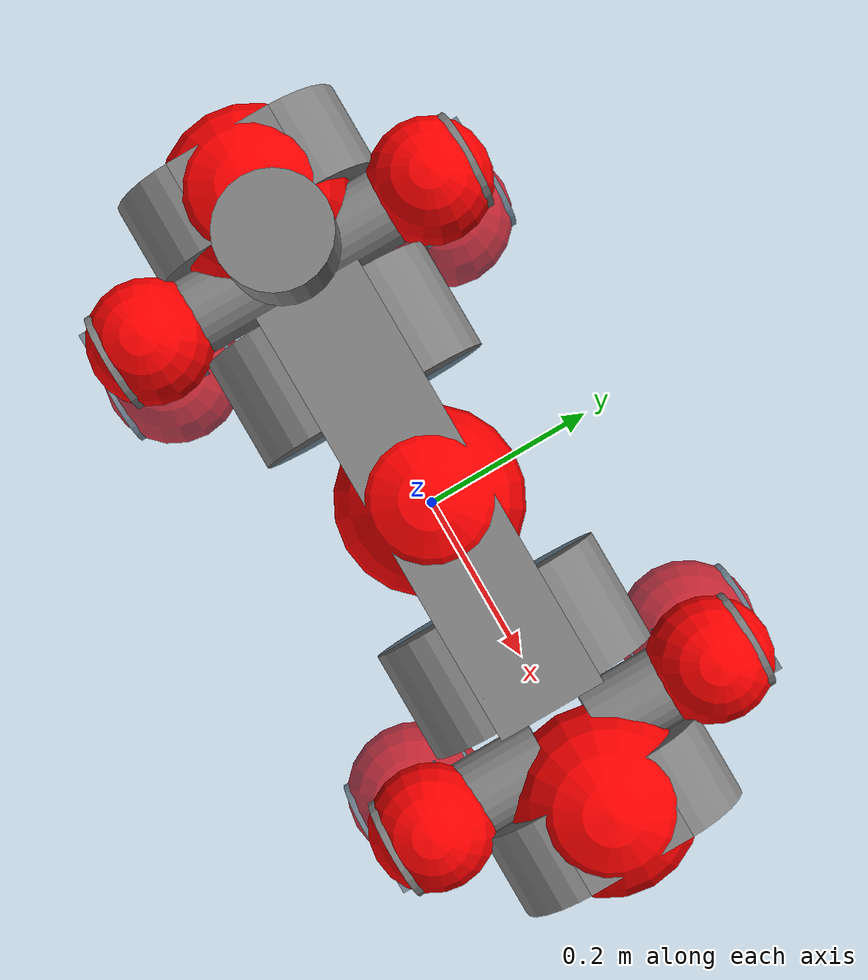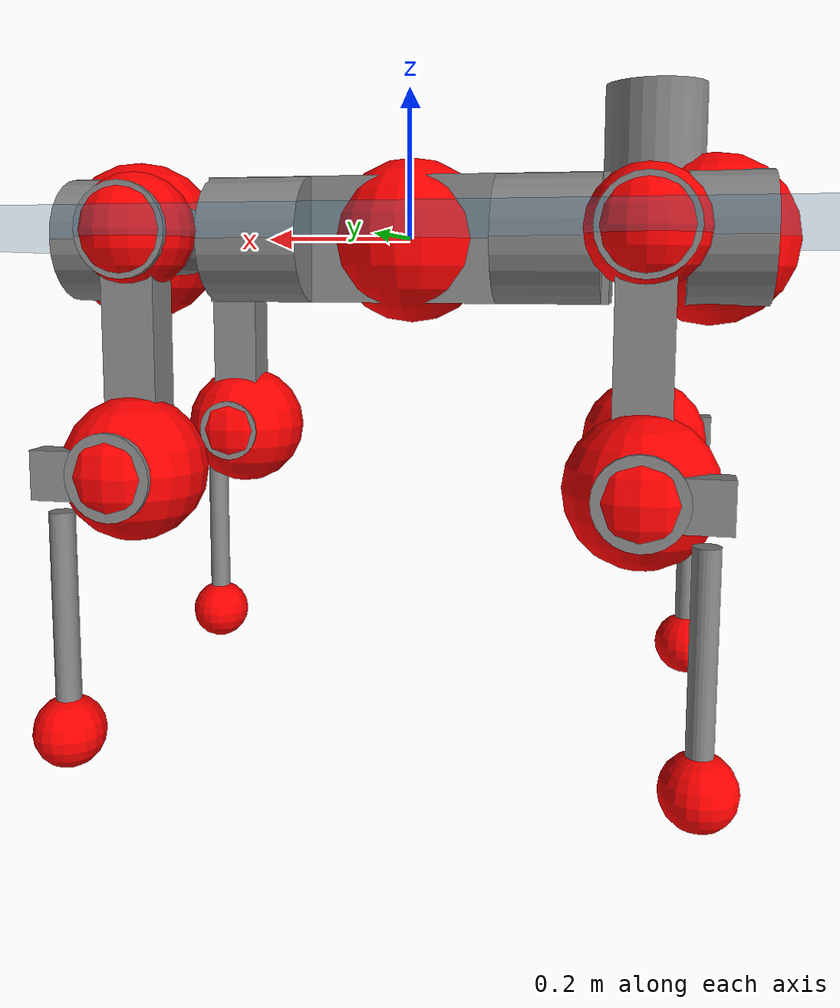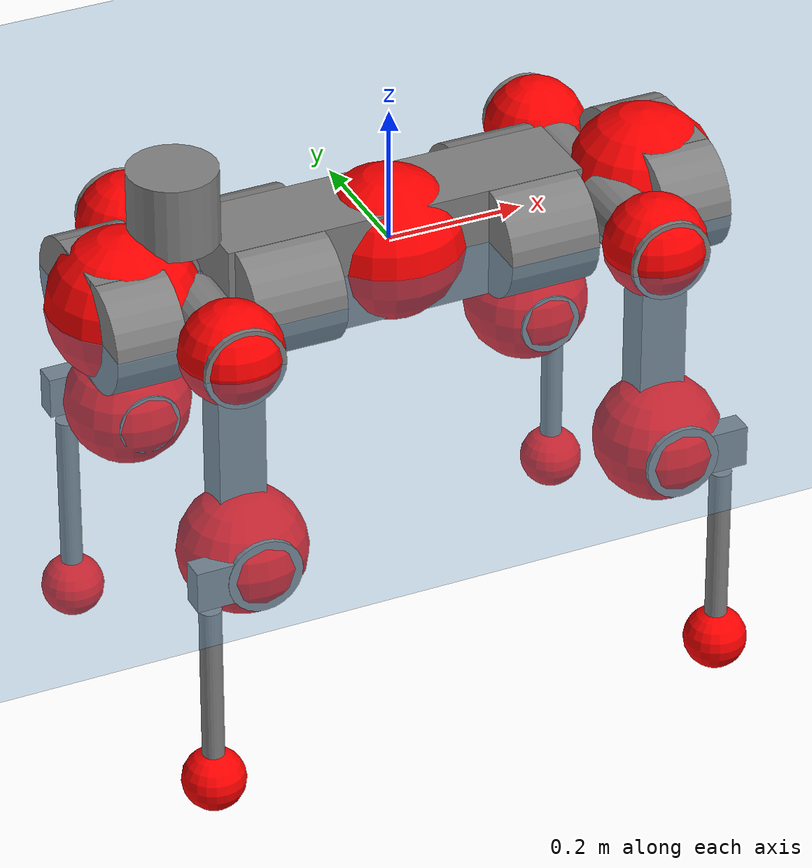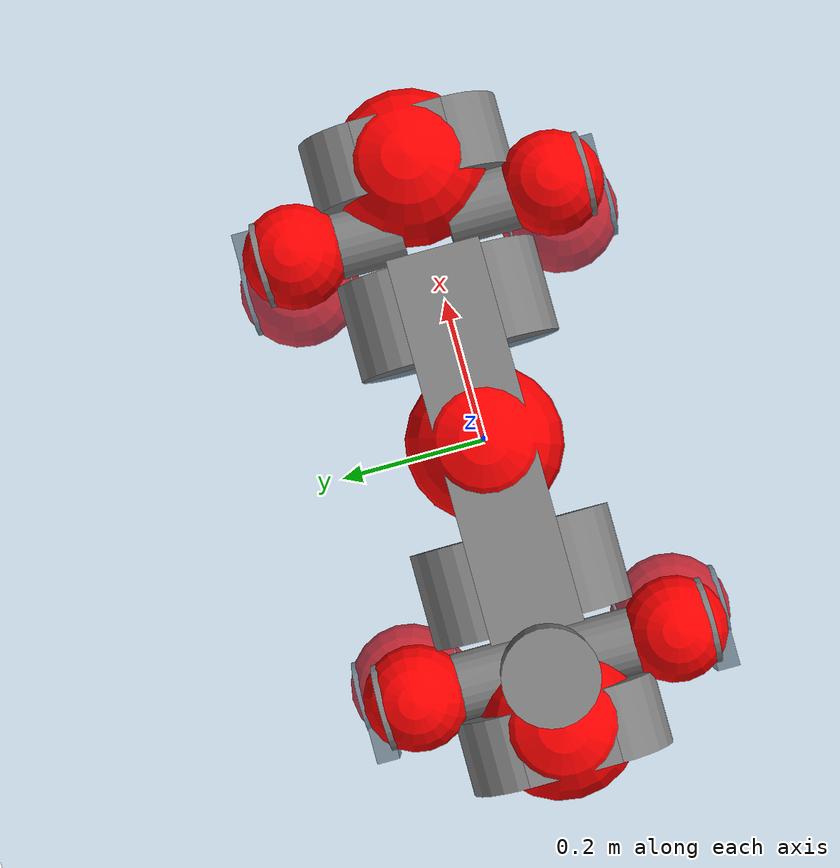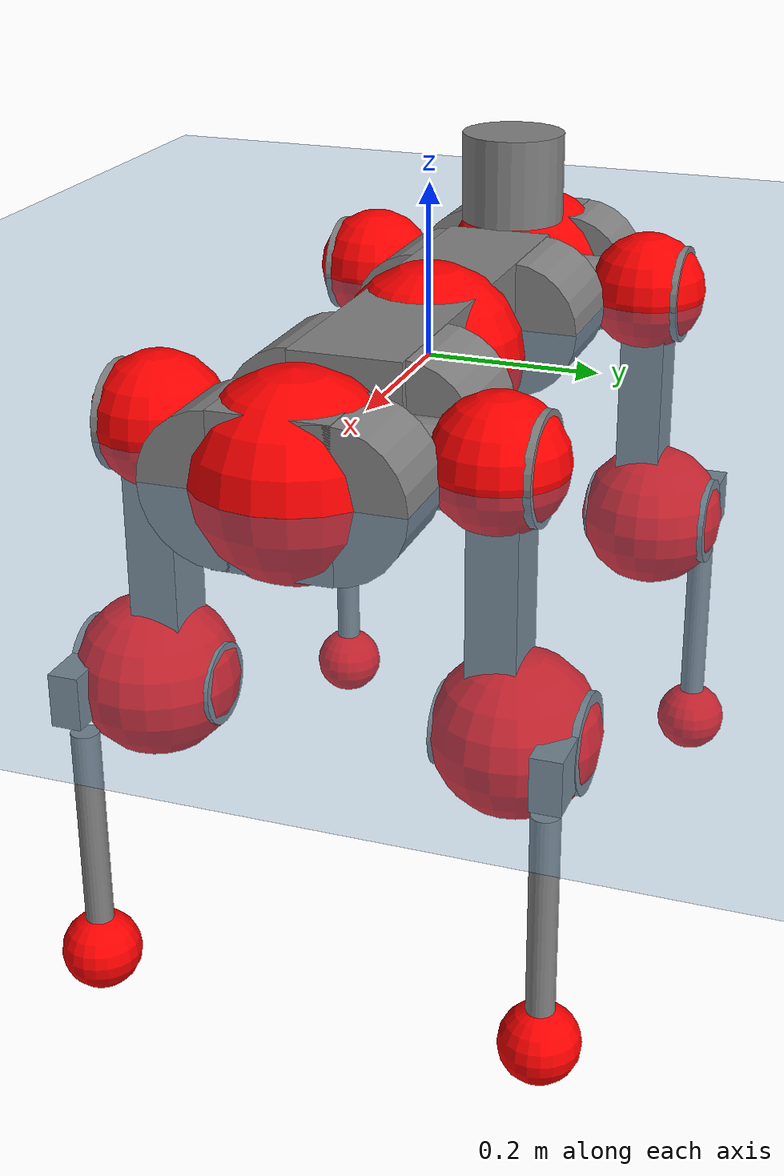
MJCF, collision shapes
<mujoco model="anymal_c">
  <compiler angle="radian" assetdir="assets" balanceinertia="true" inertiafromgeom="false"/>

  <option timestep="0.005" density="1.2" viscosity="2e-05"/>

  <size nkey="1"/>

  <visual>
    <quality shadowsize="8192"/>
    <map shadowclip="0.5"/>
  </visual>

  <default>
    <default class="/">
      <material specular="0" shininess="0.25"/>
      <geom contype="0" conaffinity="0" group="1" solref="-1000 -80"/>
      <site size="0.01 0.005 0.005" group="5"/>
      <general forcelimited="true" forcerange="-80 80" biastype="affine" gainprm="80" biasprm="0 -80 -2"/>
      <default class="anymal_c">
        <joint armature="0.01" damping="0.01" frictionloss="0.1"/>
        <default class="visual">
          <geom type="mesh" group="2"/>
          <default class="visual_zflip"/>
        </default>
        <default class="collision">
          <geom type="cylinder" group="3"/>
          <default class="foot">
            <geom size="0.03 0 0" type="sphere" condim="6" priority="1" friction="0.8 0.02 0.01" solimp="0.015 1 0.03"/>
          </default>
        </default>
      </default>
      <default class="reward_collision_sphere">
        <geom group="5" rgba="1 0 0 1"/>
      </default>
    </default>
  </default>

  <asset>
    <texture type="skybox" colorspace="auto" name="//unnamed_texture_0" builtin="gradient" rgb1="0.95 0.95 0.95" rgb2="0.95 0.95 0.95" width="100" height="600"/>
    <texture type="2d" colorspace="auto" name="texplane" builtin="checker" rgb1="0.345 0.575 0.748" rgb2="0.345 0.575 0.748" markrgb="1 1 1" width="512" height="512"/>
    <texture type="2d" colorspace="linear" name="base" file="base.png"/>
    <texture type="2d" colorspace="linear" name="top_shell" file="top_shell.png"/>
    <texture type="2d" colorspace="linear" name="bottom_shell" file="bottom_shell.png"/>
    <texture type="2d" colorspace="linear" name="remote" file="remote.png"/>
    <texture type="2d" colorspace="linear" name="hatch" file="hatch.png"/>
    <texture type="2d" colorspace="linear" name="handle" file="handle.png"/>
    <texture type="2d" colorspace="linear" name="face" file="face.png"/>
    <texture type="2d" colorspace="linear" name="battery" file="battery.png"/>
    <texture type="2d" colorspace="linear" name="lidar_cage" file="lidar_cage.png"/>
    <texture type="2d" colorspace="linear" name="depth_camera" file="depth_camera.png"/>
    <texture type="2d" colorspace="linear" name="wide_angle_camera" file="wide_angle_camera.png"/>
    <texture type="2d" colorspace="linear" name="lidar" file="lidar.png"/>
    <texture type="2d" colorspace="linear" name="drive" file="drive.png"/>
    <texture type="2d" colorspace="linear" name="hip_l" file="hip_l.png"/>
    <texture type="2d" colorspace="linear" name="shank_l" file="shank_l.png"/>
    <texture type="2d" colorspace="linear" name="foot" file="foot.png"/>
    <texture type="2d" colorspace="linear" name="thigh" file="thigh.png"/>
    <texture type="2d" colorspace="linear" name="shank_r" file="shank_r.png"/>
    <texture type="2d" colorspace="linear" name="hip_r" file="hip_r.png"/>
    <material name="MatPlane" class="/" texture="texplane" texuniform="true" texrepeat="2 2" specular="0.9" shininess="0.5"/>
    <material name="black_plastic" class="/" rgba="0.007 0.007 0.007 1"/>
    <material name="green" class="/" rgba="0.052 0.178 0.033 1"/>
    <material name="red" class="/" rgba="0.178 0.006 0.005 1"/>
    <material name="yellow" class="/" rgba="0.178 0.119 0.006 1"/>
    <material name="lwl" class="/" rgba="0.8 0.8 0.8 1"/>
    <material name="base" class="/" texture="base"/>
    <material name="top_shell" class="/" texture="top_shell"/>
    <material name="bottom_shell" class="/" texture="bottom_shell"/>
    <material name="hip_l" class="/" texture="hip_l"/>
    <material name="thigh" class="/" texture="thigh"/>
    <material name="shank_l" class="/" texture="shank_l"/>
    <material name="foot" class="/" texture="foot"/>
    <material name="hip_r" class="/" texture="hip_r"/>
    <material name="shank" class="/" texture="shank_r"/>
    <material name="hatch" class="/" texture="hatch"/>
    <material name="remote" class="/" texture="remote"/>
    <material name="handle" class="/" texture="handle"/>
    <material name="face" class="/" texture="face"/>
    <material name="depth_camera" class="/" texture="depth_camera"/>
    <material name="wide_angle_camera" class="/" texture="wide_angle_camera"/>
    <material name="battery" class="/" texture="battery"/>
    <material name="lidar_cage" class="/" texture="lidar_cage"/>
    <material name="lidar" class="/" texture="lidar"/>
    <material name="drive" class="/" texture="drive"/>
    <mesh name="base_0" class="/" file="base_0.obj"/>
    <mesh name="base_1" class="/" file="base_1.obj"/>
    <mesh name="base_2" class="/" file="base_2.obj"/>
    <mesh name="base_3" class="/" file="base_3.obj"/>
    <mesh name="base_4" class="/" file="base_4.obj"/>
    <mesh name="base_5" class="/" file="base_5.obj"/>
    <mesh name="top_shell" class="/" file="top_shell.obj"/>
    <mesh name="bottom_shell" class="/" file="bottom_shell.obj"/>
    <mesh name="remote" class="/" file="remote.obj"/>
    <mesh name="handle" class="/" file="handle.obj"/>
    <mesh name="face" class="/" file="face.obj"/>
    <mesh name="wide_angle_camera" class="/" file="wide_angle_camera.obj"/>
    <mesh name="depth_camera" class="/" file="depth_camera.obj"/>
    <mesh name="battery" class="/" file="battery.obj"/>
    <mesh name="lidar_cage" class="/" file="lidar_cage.obj"/>
    <mesh name="lidar" class="/" file="lidar.obj"/>
    <mesh name="drive" class="/" file="drive.obj"/>
    <mesh name="hip_l" class="/" file="hip_l.obj"/>
    <mesh name="thigh" class="/" file="thigh.obj"/>
    <mesh name="shank_l" class="/" file="shank_l.obj"/>
    <mesh name="foot" class="/" file="foot.obj"/>
    <mesh name="hip_r" class="/" file="hip_r.obj"/>
    <mesh name="hatch" class="/" file="hatch.obj"/>
    <mesh name="shank_r" class="/" file="shank_r.obj"/>
  </asset>

  <worldbody>
    <geom name="floor" class="/" size="100 100 0.125" type="plane" group="0" material="MatPlane"/>
    <light name="toplight_shadow" class="/" pos="0 0 5" dir="0.0990148 0.0990148 -0.990148" type="directional" ambient="0.04 0.04 0.04" diffuse="0.55 0.55 0.55" specular="0.12 0.12 0.12"/>
    <light name="toplight_fill" class="/" pos="0 0 5" dir="0.0990148 0.0990148 -0.990148" type="directional" castshadow="false" ambient="0.04 0.04 0.04" diffuse="0.3 0.3 0.3" specular="0.08 0.08 0.08"/>
    <body name="trunk" childclass="anymal_c" pos="-0.00279092 -0.000693494 -0.00258312" quat="0.999999 0.00026428 -0.00137912 0.000199434">
      <inertial pos="-0.000752438 0.00244098 0.0516108" quat="0.502783 0.496437 0.492352 0.50828" mass="14.8846" diaginertia="0.330618 0.239027 0.280625"/>
      <joint name="//unnamed_joint_0" type="free" armature="0" damping="0" frictionloss="0"/>
      <geom name="//unnamed_geom_1" class="visual" material="green" mesh="base_0"/>
      <geom name="//unnamed_geom_2" class="visual" material="yellow" mesh="base_1"/>
      <geom name="//unnamed_geom_3" class="visual" material="red" mesh="base_2"/>
      <geom name="//unnamed_geom_4" class="visual" material="black_plastic" mesh="base_3"/>
      <geom name="//unnamed_geom_5" class="visual" material="lwl" mesh="base_4"/>
      <geom name="//unnamed_geom_6" class="visual" material="base" mesh="base_5"/>
      <geom name="trunk_1" class="collision" size="0.266023 0.0642124 0.0825588" type="box"/>
      <geom name="trunk_2" class="collision" size="0.0825588 0.0665057" pos="0.189963 0.057961 0" quat="0.707107 0 0.707107 0"/>
      <geom name="trunk_3" class="collision" size="0.0825588 0.0665057" pos="-0.189963 0.057961 0" quat="0.707107 0 0.707107 0"/>
      <geom name="trunk_4" class="collision" size="0.0825588 0.0665057" pos="0.189963 -0.057961 0" quat="0.707107 0 0.707107 0"/>
      <geom name="trunk_5" class="collision" size="0.0825588 0.0665057" pos="-0.189963 -0.057961 0" quat="0.707107 0 0.707107 0"/>
      <geom name="//unnamed_geom_12" class="visual" material="top_shell" mesh="top_shell"/>
      <geom name="//unnamed_geom_13" class="visual" material="bottom_shell" mesh="bottom_shell"/>
      <geom name="//unnamed_geom_14" class="visual" material="remote" mesh="remote"/>
      <geom name="//unnamed_geom_15" class="visual" material="handle" mesh="handle"/>
      <geom name="//unnamed_geom_16" class="visual" pos="0.362022 0 0" quat="1 0 0 0" material="face" mesh="face"/>
      <geom name="trunk_6" class="collision" size="0.0504526 0.0642124 0.0825588" pos="0.410058 0 0" type="box"/>
      <geom name="//unnamed_geom_18" class="collision" size="0.0825588 0.0504526" pos="0.410058 0.057961 0" quat="0.707107 0 0.707107 0"/>
      <geom name="//unnamed_geom_19" class="collision" size="0.0825588 0.0504526" pos="0.410058 -0.057961 0" quat="0.707107 0 0.707107 0"/>
      <geom name="//unnamed_geom_20" class="visual" pos="0.403209 0 -0.0320226" quat="0.965926 0 0.258819 0" material="depth_camera" mesh="depth_camera"/>
      <geom name="//unnamed_geom_21" class="visual" pos="0.448051 0 0.0157268" material="wide_angle_camera" mesh="wide_angle_camera"/>
      <geom name="//unnamed_geom_22" class="visual_zflip" pos="-0.362022 0 0" quat="0 0 0 1" material="face" mesh="face"/>
      <geom name="trunk_7" class="collision" size="0.0504526 0.0642124 0.0825588" pos="-0.410058 0 0" quat="0 0 0 1" type="box"/>
      <geom name="//unnamed_geom_24" class="collision" size="0.0825588 0.0504526" pos="-0.410058 -0.057961 0" quat="0 -0.707107 0 0.707107"/>
      <geom name="//unnamed_geom_25" class="collision" size="0.0825588 0.0504526" pos="-0.410058 0.057961 0" quat="0 -0.707107 0 0.707107"/>
      <geom name="//unnamed_geom_26" class="visual" pos="-0.403209 0 -0.0320226" quat="0 -0.258819 0 0.965926" material="depth_camera" mesh="depth_camera"/>
      <geom name="//unnamed_geom_27" class="visual_zflip" pos="-0.448051 0 0.0157268" quat="0 0 0 1" material="wide_angle_camera" mesh="wide_angle_camera"/>
      <geom name="//unnamed_geom_28" class="visual" material="battery" mesh="battery"/>
      <geom name="//unnamed_geom_29" class="visual" pos="0 0.0627219 0.0291722" quat="0.683013 -0.183013 0.183013 0.683013" material="depth_camera" mesh="depth_camera"/>
      <geom name="//unnamed_geom_30" class="visual" pos="0 -0.0627219 0.0291722" quat="0.683013 0.183013 0.183013 -0.683013" material="depth_camera" mesh="depth_camera"/>
      <geom name="//unnamed_geom_31" class="visual" pos="-0.317915 0 0.0772157" quat="1 0 0 0" material="lidar_cage" mesh="lidar_cage"/>
      <geom name="trunk_8" class="collision" size="0.0642124 0.0550392" pos="-0.317915 0 0.140249"/>
      <geom name="//unnamed_geom_33" class="visual" pos="-0.317915 -1.78282e-05 0.149389" quat="0.707107 0 0 -0.707107" material="lidar" mesh="lidar"/>
      <geom name="//unnamed_geom_34" class="visual" pos="0.261931 0.0861926 -3.83883e-09" quat="0.258819 0.965926 0 0" material="drive" mesh="drive"/>
      <geom name="//unnamed_geom_35" class="visual" pos="0.261931 -0.0861926 3.83883e-09" quat="0.258819 -0.965926 0 0" material="drive" mesh="drive"/>
      <geom name="//unnamed_geom_36" class="visual" pos="-0.261931 0.0861926 3.83883e-09" quat="0 0 0.965926 -0.258819" material="drive" mesh="drive"/>
      <geom name="//unnamed_geom_37" class="visual" pos="-0.261931 -0.0861926 -3.83883e-09" quat="0 0 -0.965926 -0.258819" material="drive" mesh="drive"/>
      <geom name="//unnamed_geom_38" class="visual" pos="0.101314 0 0.0766904" quat="1 0 0 0" material="hatch" mesh="hatch"/>
      <geom name="//unnamed_geom_39" class="reward_collision_sphere" size="0.110078"/>
      <geom name="//unnamed_geom_40" class="reward_collision_sphere" size="0.110078" pos="0.393027 0 0"/>
      <geom name="//unnamed_geom_41" class="reward_collision_sphere" size="0.110078" pos="-0.393027 0 0"/>
      <site name="imu" pos="0.230952 0.00339392 0.0400183" size="0.0091732"/>
      <camera name="track" pos="0 -1.65603 0" quat="0.707107 0.707107 0 0" mode="trackcom"/>
      <camera name="ego_camera" pos="0.393027 0 -0.0420221" quat="-0.5 -0.5 0.5 0.5"/>
      <body name="LF_HIP" pos="0.262248 0.0855256 -0.00266975" quat="0.258584 0.965989 -0.000381063 -0.000452026">
        <inertial pos="0.0469685 -0.0134508 -0.00931419" quat="-0.125591 0.707105 -0.148601 0.679814" mass="2.18961" diaginertia="0.00304657 0.00196612 0.00443976"/>
        <joint name="LF_HAA" pos="0 0 0" axis="0.999867 0.0105197 0.0125012" range="-0.68339 0.480762" armature="0.0104963" damping="0.00314814" frictionloss="0.0943891"/>
        <geom name="//unnamed_geom_42" class="visual" pos="0 -0.000225821 3.70909e-05" quat="0.258819 -0.965926 0 0" material="hip_l" mesh="hip_l"/>
        <geom name="//unnamed_geom_43" class="visual" pos="0.0523163 -0.0628739 -0.0379463" quat="0.183013 -0.683013 0.683013 0.183013" material="drive" mesh="drive"/>
        <geom name="//unnamed_geom_44" class="collision" size="0.045866 0.0642124" pos="0.0523163 -0.00990289 -0.00725407" quat="-0.353553 -0.612372 0.612372 -0.353553"/>
        <body name="LF_THIGH" pos="0.0528721 -0.0603187 -0.0467299" quat="0.182867 -0.682968 0.683061 0.183145">
          <inertial pos="0.0274947 -0.00167306 -0.258754" quat="0.993195 -0.00314412 -0.0770305 0.0872923" mass="2.35533" diaginertia="0.0151464 0.0111276 0.00529219"/>
          <joint name="LF_HFE" pos="0 0 0" axis="0.999995 -0.000674917 0.00299283" stiffness="0.0111463" range="-3.15008 3.16107" armature="0.00802476" damping="0.00208783" frictionloss="0.0918887"/>
          <geom name="//unnamed_geom_45" class="visual" pos="0.000902863 1.4227e-06 0" quat="0.707107 0 0 -0.707107" material="thigh" mesh="thigh"/>
          <geom name="//unnamed_geom_46" class="collision" size="0.0596258 0.0366928" pos="0.0349357 0 0" quat="0.5 0.5 -0.5 -0.5"/>
          <geom name="//unnamed_geom_47" class="collision" size="0.0343995 0.0275196 0.12963" pos="0.0262018 0 -0.148458" quat="0.707107 0 0 -0.707107" type="box"/>
          <geom name="//unnamed_geom_48" class="visual" pos="0.0876014 0 -0.299408" quat="1 0 0 0" material="drive" mesh="drive"/>
          <geom name="//unnamed_geom_49" class="collision" size="0.045866 0.0642124" pos="0.0264638 0 -0.299408" quat="0.707107 0 0.707107 0"/>
          <geom name="//unnamed_geom_50" class="reward_collision_sphere" size="0.0733856" pos="0.0218348 0 0"/>
          <body name="LF_SHANK" pos="0.0880176 0.000913118 -0.296792" quat="1 -1.49454e-05 -8.16821e-05 1.766e-05">
            <inertial pos="0.00375177 -0.0533583 -0.0819837" quat="0.99295 -0.115902 -0.000841935 -0.0248421" mass="0.46425" diaginertia="0.00534519 0.00357917 0.00143258"/>
            <joint name="LF_KFE" pos="0 0 0" axis="0.999999 0.00049729 0.00102731" range="-3.08386 3.09721" armature="0.00920727" damping="0.00791931" frictionloss="0.0956814"/>
            <geom name="//unnamed_geom_51" class="visual" pos="0.000294404 0.00156978 0" quat="0.707107 0 0 -0.707107" material="shank_l" mesh="shank_l"/>
            <geom name="LF_kfe_act" class="collision" size="0.0550392 0.0183464" pos="0.0174679 0 0" quat="0.5 0.5 -0.5 -0.5"/>
            <geom name="//unnamed_geom_53" class="collision" size="0.052745 0.0309596 0.0174291" pos="0.0174679 -0.04761 0" quat="0.5 0.5 -0.5 -0.5" type="box"/>
            <geom name="//unnamed_geom_54" class="visual" pos="0.0113977 -0.072318 -0.355056" quat="0.382683 0 0 -0.92388" material="foot" mesh="foot"/>
            <geom name="LF_calf" class="collision" size="0.0160531 0.129573" pos="0.0113978 -0.0728239 -0.177528" quat="0.707107 0 0 -0.707107"/>
            <geom name="LF_foot" class="foot" size="0.0269986" pos="0.0113978 -0.0728239 -0.331418" quat="0.707107 0 0 -0.707107"/>
            <geom name="//unnamed_geom_57" class="reward_collision_sphere" size="0.091732" pos="-0.0436697 0 0"/>
            <geom name="//unnamed_geom_58" class="reward_collision_sphere" size="0.045866" pos="0.0113978 -0.0728239 -0.331418"/>
            <site name="LF_foot" class="foot" pos="0.0113978 -0.0728239 -0.331418" quat="0.707107 0 0 -0.707107" size="0.0091732"/>
          </body>
        </body>
      </body>
      <body name="RF_HIP" pos="0.265135 -0.0837274 0.00189419" quat="0.258772 -0.965938 9.18987e-05 0.000132387">
        <inertial pos="0.0489271 0.0103075 -0.00884351" quat="0.141808 0.678042 0.122418 0.710748" mass="2.17972" diaginertia="0.00293347 0.00200276 0.00427752"/>
        <joint name="RF_HAA" pos="0 0 0" axis="1 -0.000428466 6.37499e-05" range="-0.437929 0.704848" armature="0.00928842" damping="0.0128237" frictionloss="0.0986625"/>
        <geom name="//unnamed_geom_59" class="visual" pos="0 0.000225819 3.70908e-05" quat="0.258819 0.965926 0 0" material="hip_r" mesh="hip_r"/>
        <geom name="//unnamed_geom_60" class="visual" pos="0.0523163 0.0628739 -0.0379463" quat="0.183013 0.683013 0.683013 -0.183013" material="drive" mesh="drive"/>
        <geom name="//unnamed_geom_61" class="collision" size="0.045866 0.0642124" pos="0.0523163 0.00990289 -0.00725407" quat="-0.353553 0.612372 0.612372 0.353553"/>
        <body name="RF_THIGH" pos="0.055121 0.0618357 -0.0470788" quat="0.182839 0.68313 0.682936 -0.183033">
          <inertial pos="0.0271228 -0.000128607 -0.259381" quat="0.992957 -0.00287748 -0.0797687 0.0875517" mass="2.4543" diaginertia="0.0151572 0.0118732 0.00546654"/>
          <joint name="RF_HFE" pos="0 0 0" axis="1 -0.000450086 -0.000192814" stiffness="0.00483607" range="-3.17375 3.19003" armature="0.00810447" damping="0.00752325" frictionloss="0.0928922"/>
          <geom name="//unnamed_geom_62" class="visual" pos="0.000902863 1.4227e-06 0" quat="0.707107 0 0 -0.707107" material="thigh" mesh="thigh"/>
          <geom name="//unnamed_geom_63" class="collision" size="0.0596258 0.0366928" pos="0.0349357 0 0" quat="0.5 0.5 0.5 0.5"/>
          <geom name="//unnamed_geom_64" class="collision" size="0.0343995 0.0275196 0.12963" pos="0.0262018 0 -0.148458" quat="0.707107 0 0 0.707107" type="box"/>
          <geom name="//unnamed_geom_65" class="visual" pos="0.0876014 0 -0.299408" quat="1 0 0 0" material="drive" mesh="drive"/>
          <geom name="//unnamed_geom_66" class="collision" size="0.045866 0.0642124" pos="0.0264638 0 -0.299408" quat="0.707107 0 0.707107 0"/>
          <geom name="//unnamed_geom_67" class="reward_collision_sphere" size="0.0733856" pos="0.0218348 0 0"/>
          <body name="RF_SHANK" pos="0.087977 -0.000894365 -0.299007" quat="1 7.97579e-05 7.9689e-05 6.45885e-05">
            <inertial pos="0.00512542 0.050122 -0.0841737" quat="0.992496 0.11593 -0.00021753 0.0388944" mass="0.43649" diaginertia="0.00526916 0.00361039 0.00138945"/>
            <joint name="RF_KFE" pos="0 0 0" axis="1 -3.79246e-05 0.000291784" stiffness="9.81105e-05" range="-3.16287 3.08309" armature="0.0104789" damping="0.00707683" frictionloss="0.09242"/>
            <geom name="//unnamed_geom_68" class="visual" pos="0.000294402 -0.00156977 0" quat="0.707107 0 0 0.707107" material="shank" mesh="shank_r"/>
            <geom name="RF_kfe_act" class="collision" size="0.0550392 0.0183464" pos="0.0174679 0 0" quat="0.5 0.5 0.5 0.5"/>
            <geom name="//unnamed_geom_70" class="collision" size="0.052745 0.0309596 0.0174291" pos="0.0174679 0.04761 0" quat="0.5 0.5 0.5 0.5" type="box"/>
            <geom name="//unnamed_geom_71" class="visual" pos="0.0113979 0.072318 -0.355056" quat="0.382683 0 0 0.92388" material="foot" mesh="foot"/>
            <geom name="RF_calf" class="collision" size="0.0160531 0.129573" pos="0.0113978 0.0728239 -0.177528" quat="0.707107 0 0 0.707107"/>
            <geom name="RF_foot" class="foot" size="0.0292112" pos="0.0113978 0.0728239 -0.331418" quat="0.707107 0 0 0.707107"/>
            <geom name="//unnamed_geom_74" class="reward_collision_sphere" size="0.091732" pos="-0.0436697 0 0"/>
            <geom name="//unnamed_geom_75" class="reward_collision_sphere" size="0.045866" pos="0.0113978 0.0728239 -0.331418"/>
            <site name="RF_foot" class="foot" pos="0.0113978 0.0728239 -0.331418" quat="0.707107 0 0 0.707107" size="0.0091732"/>
          </body>
        </body>
      </body>
      <body name="LH_HIP" pos="-0.260679 0.0846016 -0.000799124" quat="-1.02697e-05 4.8121e-06 0.965921 -0.258837">
        <inertial pos="0.0499462 0.0135419 -0.0106712" quat="0.135719 0.67618 0.128702 0.712599" mass="2.22107" diaginertia="0.00309453 0.0018677 0.00420174"/>
        <joint name="LH_HAA" pos="0 0 0" axis="1 -0.000624224 -7.80282e-05" range="-0.472372 0.760555" armature="0.00937046" damping="0" frictionloss="0.100685"/>
        <geom name="//unnamed_geom_76" class="visual" pos="0 0.000225819 3.70908e-05" quat="-0.258819 -0.965926 0 0" material="hip_r" mesh="hip_r"/>
        <geom name="//unnamed_geom_77" class="visual" pos="0.0523163 0.0628739 -0.0379463" quat="0.183013 0.683013 0.683013 -0.183013" material="drive" mesh="drive"/>
        <geom name="//unnamed_geom_78" class="collision" size="0.045866 0.0642124" pos="0.0523163 0.00990289 -0.00725407" quat="-0.353553 0.612372 0.612372 0.353553"/>
        <body name="LH_THIGH" pos="0.0512206 0.0597851 -0.0461558" quat="0.183017 0.683087 0.682911 -0.183114">
          <inertial pos="0.024885 -0.000690801 -0.258743" quat="0.992198 -4.0108e-05 -0.0783489 0.0969767" mass="2.43947" diaginertia="0.0154671 0.0118797 0.00536773"/>
          <joint name="LH_HFE" pos="0 0 0" axis="0.999919 0.0123907 -0.003036" range="-3.18025 3.13843" armature="0.00993899" damping="0.0146524" frictionloss="0.0914406"/>
          <geom name="//unnamed_geom_79" class="visual" pos="0.000902863 1.4227e-06 0" quat="0.707107 0 0 -0.707107" material="thigh" mesh="thigh"/>
          <geom name="//unnamed_geom_80" class="collision" size="0.0596258 0.0366928" pos="0.0349357 0 0" quat="0.5 0.5 -0.5 -0.5"/>
          <geom name="//unnamed_geom_81" class="collision" size="0.0343995 0.0275196 0.12963" pos="0.0262018 0 -0.148458" quat="0.707107 0 0 -0.707107" type="box"/>
          <geom name="//unnamed_geom_82" class="visual" pos="0.0876014 0 -0.299408" quat="1 0 0 0" material="drive" mesh="drive"/>
          <geom name="//unnamed_geom_83" class="collision" size="0.045866 0.0642124" pos="0.0264638 0 -0.299408" quat="0.707107 0 0.707107 0"/>
          <geom name="//unnamed_geom_84" class="reward_collision_sphere" size="0.0733856" pos="0.0218348 0 0"/>
          <body name="LH_SHANK" pos="0.0854527 0.00104187 -0.301755" quat="1 6.60396e-05 0.000494481 -0.000376646">
            <inertial pos="0.00753987 0.0477586 -0.0819725" quat="0.991544 0.125631 -0.00581687 0.0319894" mass="0.441348" diaginertia="0.00517715 0.0037087 0.00141213"/>
            <joint name="LH_KFE" pos="0 0 0" axis="0.9999 0.010425 0.00950827" range="-3.11839 3.14062" armature="0.00887292" damping="0.00543456" frictionloss="0.104507"/>
            <geom name="//unnamed_geom_85" class="visual" pos="0.000294402 -0.00156977 0" quat="-0.707107 0 0 -0.707107" material="shank" mesh="shank_r"/>
            <geom name="LH_kfe_act" class="collision" size="0.0550392 0.0183464" pos="0.0174679 0 0" quat="0.5 0.5 -0.5 -0.5"/>
            <geom name="//unnamed_geom_87" class="collision" size="0.052745 0.0309596 0.0174291" pos="0.0174679 0.04761 0" quat="0.5 0.5 -0.5 -0.5" type="box"/>
            <geom name="//unnamed_geom_88" class="visual" pos="0.0113979 0.072318 -0.355056" quat="-0.382683 0 0 -0.92388" material="foot" mesh="foot"/>
            <geom name="LH_calf" class="collision" size="0.0160531 0.129573" pos="0.0113978 0.0728239 -0.177528" quat="0.707107 0 0 -0.707107"/>
            <geom name="LH_foot" class="foot" size="0.031895" pos="0.0113978 0.0728239 -0.331418" quat="0.707107 0 0 -0.707107"/>
            <geom name="//unnamed_geom_91" class="reward_collision_sphere" size="0.091732" pos="-0.0436697 0 0"/>
            <geom name="//unnamed_geom_92" class="reward_collision_sphere" size="0.045866" pos="0.0113978 0.0728239 -0.331418"/>
            <site name="LH_foot" class="foot" pos="0.0113978 0.0728239 -0.331418" quat="0.707107 0 0 -0.707107" size="0.0091732"/>
          </body>
        </body>
      </body>
      <body name="RH_HIP" pos="-0.261944 -0.0881543 0.000922681" quat="-0.000310162 -6.70466e-05 -0.966078 -0.258251">
        <inertial pos="0.0493887 -0.0107009 -0.0117343" quat="-0.127987 0.709779 -0.135274 0.679363" mass="2.17747" diaginertia="0.0029511 0.00189121 0.00414059"/>
        <joint name="RH_HAA" pos="0 0 0" axis="0.999989 -0.0003664 -0.00461147" range="-0.690977 0.442256" armature="0.00797727" damping="0" frictionloss="0.0995699"/>
        <geom name="//unnamed_geom_93" class="visual" pos="0 -0.000225821 3.70909e-05" quat="-0.258819 0.965926 0 0" material="hip_l" mesh="hip_l"/>
        <geom name="//unnamed_geom_94" class="visual" pos="0.0523163 -0.0628739 -0.0379463" quat="-0.183013 0.683013 -0.683013 -0.183013" material="drive" mesh="drive"/>
        <geom name="//unnamed_geom_95" class="collision" size="0.045866 0.0642124" pos="0.0523163 -0.00990289 -0.00725407" quat="0.353553 0.612372 -0.612372 0.353553"/>
        <body name="RH_THIGH" pos="0.0522587 -0.0598863 -0.0421283" quat="-0.183065 0.683109 -0.682814 -0.183345">
          <inertial pos="0.0243738 0.00273106 -0.258129" quat="0.99313 -0.00553757 -0.0816264 0.0836625" mass="2.22612" diaginertia="0.0153425 0.0114222 0.00535293"/>
          <joint name="RH_HFE" pos="0 0 0" axis="0.999942 -0.00989795 -0.00413232" stiffness="0.00986784" range="-3.17275 3.18124" armature="0.00915392" damping="0.00726433" frictionloss="0.0806372"/>
          <geom name="//unnamed_geom_96" class="visual" pos="0.000902863 1.4227e-06 0" quat="0.707107 0 0 -0.707107" material="thigh" mesh="thigh"/>
          <geom name="//unnamed_geom_97" class="collision" size="0.0596258 0.0366928" pos="0.0349357 0 0" quat="0.5 0.5 0.5 0.5"/>
          <geom name="//unnamed_geom_98" class="collision" size="0.0343995 0.0275196 0.12963" pos="0.0262018 0 -0.148458" quat="0.707107 0 0 0.707107" type="box"/>
          <geom name="//unnamed_geom_99" class="visual" pos="0.0876014 0 -0.299408" quat="1 0 0 0" material="drive" mesh="drive"/>
          <geom name="//unnamed_geom_100" class="collision" size="0.045866 0.0642124" pos="0.0264638 0 -0.299408" quat="0.707107 0 0.707107 0"/>
          <geom name="//unnamed_geom_101" class="reward_collision_sphere" size="0.0733856" pos="0.0218348 0 0"/>
          <body name="RH_SHANK" pos="0.0887727 0.000294368 -0.299726" quat="1 -0.000163115 0.000147859 4.97901e-05">
            <inertial pos="0.00656133 -0.0506255 -0.085186" quat="0.993089 -0.115074 0.000513836 -0.02305" mass="0.423259" diaginertia="0.00497415 0.00351368 0.00136453"/>
            <joint name="RH_KFE" pos="0 0 0" axis="0.999962 -0.00549829 0.0067787" range="-3.1335 3.19021" armature="0.00817237" damping="0.00569549" frictionloss="0.0914619"/>
            <geom name="//unnamed_geom_102" class="visual" pos="0.000294404 0.00156978 0" quat="0.707107 0 0 -0.707107" material="shank_l" mesh="shank_l"/>
            <geom name="RH_kfe_act" class="collision" size="0.0550392 0.0183464" pos="0.0174679 0 0" quat="0.5 0.5 0.5 0.5"/>
            <geom name="//unnamed_geom_104" class="collision" size="0.052745 0.0309596 0.0174291" pos="0.0174679 -0.04761 0" quat="0.5 0.5 0.5 0.5" type="box"/>
            <geom name="//unnamed_geom_105" class="visual" pos="0.0113977 -0.072318 -0.355056" quat="0.382683 0 0 -0.92388" material="foot" mesh="foot"/>
            <geom name="RH_calf" class="collision" size="0.0160531 0.129573" pos="0.0113978 -0.0728239 -0.177528" quat="0.707107 0 0 0.707107"/>
            <geom name="RH_foot" class="foot" size="0.0242805" pos="0.0113978 -0.0728239 -0.331418" quat="0.707107 0 0 0.707107"/>
            <geom name="//unnamed_geom_108" class="reward_collision_sphere" size="0.091732" pos="-0.0436697 0 0"/>
            <geom name="//unnamed_geom_109" class="reward_collision_sphere" size="0.045866" pos="0.0113978 -0.0728239 -0.331418"/>
            <site name="RH_foot" class="foot" pos="0.0113978 -0.0728239 -0.331418" quat="0.707107 0 0 0.707107" size="0.0091732"/>
          </body>
        </body>
      </body>
    </body>
  </worldbody>

  <contact>
    <pair class="/" geom1="floor" geom2="LF_foot" name="//unnamed_contact_0"/>
    <pair class="/" geom1="floor" geom2="RF_foot" name="//unnamed_contact_1"/>
    <pair class="/" geom1="floor" geom2="LH_foot" name="//unnamed_contact_2"/>
    <pair class="/" geom1="floor" geom2="RH_foot" name="//unnamed_contact_3"/>
  </contact>

  <actuator>
    <general name="LF_HAA" class="/" joint="LF_HAA" forcerange="-75.4288 75.4288" gainprm="67.7351" biasprm="0 -67.7351 -1.89403"/>
    <general name="LF_HFE" class="/" joint="LF_HFE" forcerange="-79.4247 79.4247" gainprm="67.7351" biasprm="0 -67.7351 -1.89403"/>
    <general name="LF_KFE" class="/" joint="LF_KFE" forcerange="-67.3234 67.3234" gainprm="67.7351" biasprm="0 -67.7351 -1.89403"/>
    <general name="RF_HAA" class="/" joint="RF_HAA" forcerange="-71.1363 71.1363" gainprm="67.7351" biasprm="0 -67.7351 -1.89403"/>
    <general name="RF_HFE" class="/" joint="RF_HFE" forcerange="-82.9397 82.9397" gainprm="67.7351" biasprm="0 -67.7351 -1.89403"/>
    <general name="RF_KFE" class="/" joint="RF_KFE" forcerange="-74.3718 74.3718" gainprm="67.7351" biasprm="0 -67.7351 -1.89403"/>
    <general name="LH_HAA" class="/" joint="LH_HAA" forcerange="-78.1851 78.1851" gainprm="67.7351" biasprm="0 -67.7351 -1.89403"/>
    <general name="LH_HFE" class="/" joint="LH_HFE" forcerange="-81.365 81.365" gainprm="67.7351" biasprm="0 -67.7351 -1.89403"/>
    <general name="LH_KFE" class="/" joint="LH_KFE" forcerange="-69.7913 69.7913" gainprm="67.7351" biasprm="0 -67.7351 -1.89403"/>
    <general name="RH_HAA" class="/" joint="RH_HAA" forcerange="-72.8581 72.8581" gainprm="67.7351" biasprm="0 -67.7351 -1.89403"/>
    <general name="RH_HFE" class="/" joint="RH_HFE" forcerange="-70.8954 70.8954" gainprm="67.7351" biasprm="0 -67.7351 -1.89403"/>
    <general name="RH_KFE" class="/" joint="RH_KFE" forcerange="-66.6972 66.6972" gainprm="67.7351" biasprm="0 -67.7351 -1.89403"/>
  </actuator>

  <sensor>
    <gyro site="imu" name="imu_angular_velocity"/>
    <velocimeter site="imu" name="imu_linear_velocity"/>
    <framelinvel objtype="site" objname="LF_foot" name="LF_foot_global_linear_velocity"/>
    <framelinvel objtype="site" objname="RF_foot" name="RF_foot_global_linear_velocity"/>
    <framelinvel objtype="site" objname="LH_foot" name="LH_foot_global_linear_velocity"/>
    <framelinvel objtype="site" objname="RH_foot" name="RH_foot_global_linear_velocity"/>
  </sensor>

  <keyframe>
    <key name="home" qpos="0 0 0.55 1 0 0 0 0 0.4 -0.8 0 -0.4 0.8 0 -0.4 0.8 0 0.4 -0.8"/>
  </keyframe>
</mujoco>
